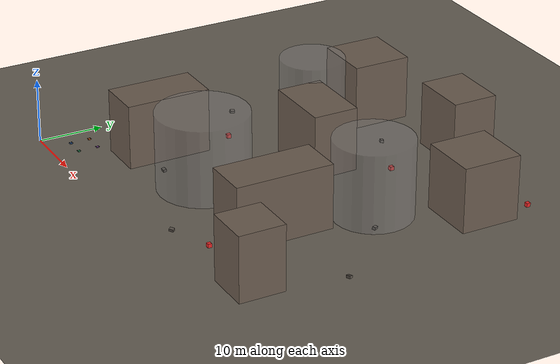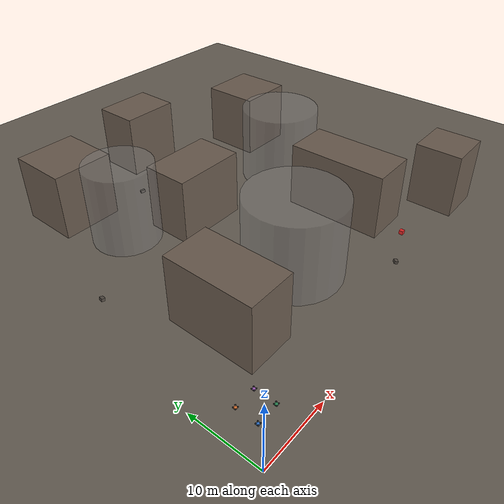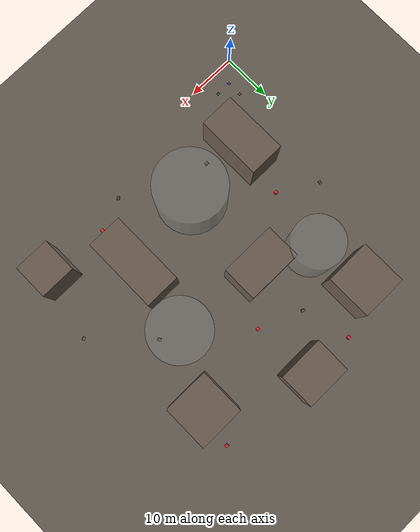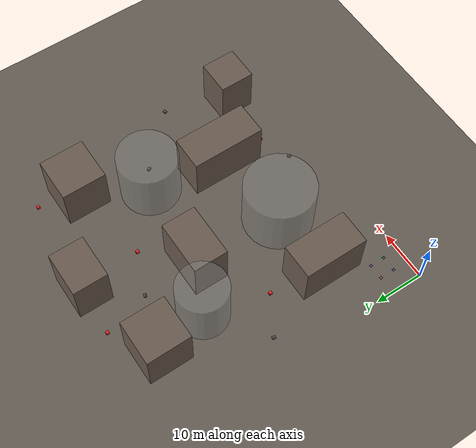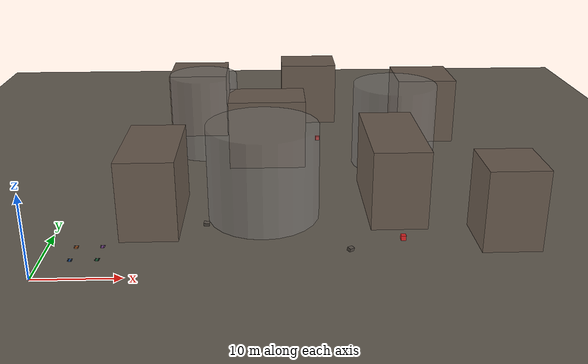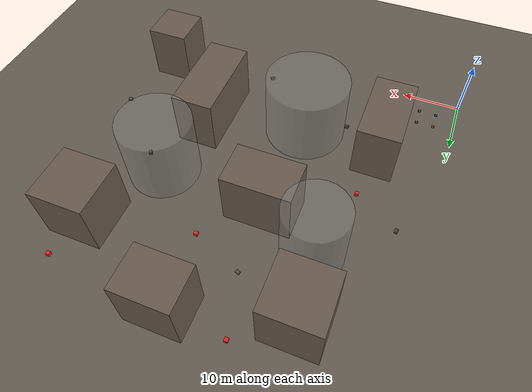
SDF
<?xml version="1.0"?>
<sdf version="1.8">
  <world name="apocalypse">
    <physics name="default" type="ignored"><max_step_size>0.004</max_step_size>
      <real_time_factor>1.0</real_time_factor></physics>
    <plugin filename="gz-sim-physics-system" name="gz::sim::systems::Physics"/>
    <plugin filename="gz-sim-user-commands-system" name="gz::sim::systems::UserCommands"/>
    <plugin filename="gz-sim-scene-broadcaster-system" name="gz::sim::systems::SceneBroadcaster"/>
    <plugin filename="gz-sim-sensors-system" name="gz::sim::systems::Sensors">
      <render_engine>ogre2</render_engine></plugin>
    <plugin filename="gz-sim-imu-system" name="gz::sim::systems::Imu"/>
    <plugin filename="gz-sim-navsat-system" name="gz::sim::systems::NavSat"/>
    <spherical_coordinates><surface_model>EARTH_WGS84</surface_model>
      <latitude_deg>44.4268</latitude_deg><longitude_deg>26.1025</longitude_deg>
      <elevation>80</elevation><heading_deg>0</heading_deg></spherical_coordinates>
    <scene><ambient>0.28 0.26 0.24 1</ambient>
      <background>0.45 0.38 0.32 1</background><shadows>true</shadows></scene>
    <light type="directional" name="sun_dusk">
      <cast_shadows>true</cast_shadows><pose>0 0 60 0 0 0</pose>
      <diffuse>0.7 0.55 0.4 1</diffuse><specular>0.2 0.2 0.2 1</specular>
      <direction>-0.4 0.2 -0.5</direction>
    </light>
    <model name="ground"><static>true</static>
      <pose>30.0 30.0 0 0 0 0</pose>
      <link name="l">
        <collision name="c"><geometry><plane><normal>0 0 1</normal>
          <size>60.0 60.0</size></plane></geometry></collision>
        <visual name="v"><geometry><plane><normal>0 0 1</normal>
          <size>60.0 60.0</size></plane></geometry>
          <material><ambient>0.36 0.33 0.29 1</ambient>
            <diffuse>0.4 0.37 0.33 1</diffuse></material>
        </visual>
      </link>
    </model>

    <model name="ruin_0"><static>true</static>
      <pose>11.5 14.5 5.0 0 0 0</pose>
      <link name="l">
        <collision name="c"><geometry><box><size>7 13 10.0</size></box></geometry></collision>
        <visual name="v"><geometry><box><size>7 13 10.0</size></box></geometry>
          <material><ambient>0.32 0.27 0.24 1</ambient><diffuse>0.42 0.36 0.31 1</diffuse></material>
        </visual>
      </link>
    </model>
    <model name="ruin_1"><static>true</static>
      <pose>25.5 33.5 5.0 0 0 0</pose>
      <link name="l">
        <collision name="c"><geometry><box><size>11 7 10.0</size></box></geometry></collision>
        <visual name="v"><geometry><box><size>11 7 10.0</size></box></geometry>
          <material><ambient>0.32 0.27 0.24 1</ambient><diffuse>0.42 0.36 0.31 1</diffuse></material>
        </visual>
      </link>
    </model>
    <model name="ruin_2"><static>true</static>
      <pose>41.5 17.5 5.0 0 0 0</pose>
      <link name="l">
        <collision name="c"><geometry><box><size>7 15 10.0</size></box></geometry></collision>
        <visual name="v"><geometry><box><size>7 15 10.0</size></box></geometry>
          <material><ambient>0.32 0.27 0.24 1</ambient><diffuse>0.42 0.36 0.31 1</diffuse></material>
        </visual>
      </link>
    </model>
    <model name="ruin_3"><static>true</static>
      <pose>50.5 44.5 5.0 0 0 0</pose>
      <link name="l">
        <collision name="c"><geometry><box><size>9 9 10.0</size></box></geometry></collision>
        <visual name="v"><geometry><box><size>9 9 10.0</size></box></geometry>
          <material><ambient>0.32 0.27 0.24 1</ambient><diffuse>0.42 0.36 0.31 1</diffuse></material>
        </visual>
      </link>
    </model>
    <model name="ruin_4"><static>true</static>
      <pose>14.5 48.5 5.0 0 0 0</pose>
      <link name="l">
        <collision name="c"><geometry><box><size>9 9 10.0</size></box></geometry></collision>
        <visual name="v"><geometry><box><size>9 9 10.0</size></box></geometry>
          <material><ambient>0.32 0.27 0.24 1</ambient><diffuse>0.42 0.36 0.31 1</diffuse></material>
        </visual>
      </link>
    </model>
    <model name="ruin_5"><static>true</static>
      <pose>32.5 53.5 5.0 0 0 0</pose>
      <link name="l">
        <collision name="c"><geometry><box><size>9 7 10.0</size></box></geometry></collision>
        <visual name="v"><geometry><box><size>9 7 10.0</size></box></geometry>
          <material><ambient>0.32 0.27 0.24 1</ambient><diffuse>0.42 0.36 0.31 1</diffuse></material>
        </visual>
      </link>
    </model>
    <model name="ruin_6"><static>true</static>
      <pose>53.5 7.5 5.0 0 0 0</pose>
      <link name="l">
        <collision name="c"><geometry><box><size>7 7 10.0</size></box></geometry></collision>
        <visual name="v"><geometry><box><size>7 7 10.0</size></box></geometry>
          <material><ambient>0.32 0.27 0.24 1</ambient><diffuse>0.42 0.36 0.31 1</diffuse></material>
        </visual>
      </link>
    </model>

    <model name="smoke_0"><static>true</static>
      <pose>25 15 6 0 0 0</pose>
      <link name="l">
        <visual name="v"><transparency>0.6</transparency>
          <geometry><cylinder><radius>7</radius><length>12</length></cylinder></geometry>
          <material><ambient>0.5 0.5 0.5 1</ambient><diffuse>0.55 0.55 0.55 1</diffuse></material>
        </visual>
      </link>
    </model>
    <model name="smoke_1"><static>true</static>
      <pose>44 32 6 0 0 0</pose>
      <link name="l">
        <visual name="v"><transparency>0.6</transparency>
          <geometry><cylinder><radius>6</radius><length>12</length></cylinder></geometry>
          <material><ambient>0.5 0.5 0.5 1</ambient><diffuse>0.55 0.55 0.55 1</diffuse></material>
        </visual>
      </link>
    </model>
    <model name="smoke_2"><static>true</static>
      <pose>16 38 6 0 0 0</pose>
      <link name="l">
        <visual name="v"><transparency>0.6</transparency>
          <geometry><cylinder><radius>5</radius><length>12</length></cylinder></geometry>
          <material><ambient>0.5 0.5 0.5 1</ambient><diffuse>0.55 0.55 0.55 1</diffuse></material>
        </visual>
      </link>
    </model>

    <model name="victim_0"><static>true</static>
      <pose>12.5 25.5 0.3 0 0 0</pose>
      <link name="l">
        <collision name="c"><geometry><box><size>0.6 0.6 0.6</size></box></geometry></collision>
        <visual name="v"><geometry><box><size>0.6 0.6 0.6</size></box></geometry>
          <material><ambient>0.8 0.1 0.1 1</ambient><diffuse>0.9 0.15 0.15 1</diffuse></material>
        </visual>
      </link>
    </model>
    <model name="victim_1"><static>true</static>
      <pose>33.5 41.5 0.3 0 0 0</pose>
      <link name="l">
        <collision name="c"><geometry><box><size>0.6 0.6 0.6</size></box></geometry></collision>
        <visual name="v"><geometry><box><size>0.6 0.6 0.6</size></box></geometry>
          <material><ambient>0.8 0.1 0.1 1</ambient><diffuse>0.9 0.15 0.15 1</diffuse></material>
        </visual>
      </link>
    </model>
    <model name="victim_2"><static>true</static>
      <pose>41.5 7.5 0.3 0 0 0</pose>
      <link name="l">
        <collision name="c"><geometry><box><size>0.6 0.6 0.6</size></box></geometry></collision>
        <visual name="v"><geometry><box><size>0.6 0.6 0.6</size></box></geometry>
          <material><ambient>0.8 0.1 0.1 1</ambient><diffuse>0.9 0.15 0.15 1</diffuse></material>
        </visual>
      </link>
    </model>
    <model name="victim_3"><static>true</static>
      <pose>52.5 52.5 0.3 0 0 0</pose>
      <link name="l">
        <collision name="c"><geometry><box><size>0.6 0.6 0.6</size></box></geometry></collision>
        <visual name="v"><geometry><box><size>0.6 0.6 0.6</size></box></geometry>
          <material><ambient>0.8 0.1 0.1 1</ambient><diffuse>0.9 0.15 0.15 1</diffuse></material>
        </visual>
      </link>
    </model>
    <model name="victim_4"><static>true</static>
      <pose>22.5 54.5 0.3 0 0 0</pose>
      <link name="l">
        <collision name="c"><geometry><box><size>0.6 0.6 0.6</size></box></geometry></collision>
        <visual name="v"><geometry><box><size>0.6 0.6 0.6</size></box></geometry>
          <material><ambient>0.8 0.1 0.1 1</ambient><diffuse>0.9 0.15 0.15 1</diffuse></material>
        </visual>
      </link>
    </model>

    <model name="debris_0">
      <pose>18 12 0.25 0.2 0.1 0.0</pose>
      <link name="l">
        <inertial><mass>2.0</mass><inertia>
          <ixx>0.083</ixx><iyy>0.083</iyy><izz>0.083</izz>
          <ixy>0</ixy><ixz>0</ixz><iyz>0</iyz></inertia></inertial>
        <collision name="c"><geometry><box><size>0.7 0.5 0.4</size></box></geometry></collision>
        <visual name="v"><geometry><box><size>0.7 0.5 0.4</size></box></geometry>
          <material><ambient>0.25 0.23 0.21 1</ambient><diffuse>0.33 0.3 0.27 1</diffuse></material>
        </visual>
      </link>
    </model>
    <model name="debris_1">
      <pose>35 5 0.25 0.2 0.1 0.7</pose>
      <link name="l">
        <inertial><mass>2.0</mass><inertia>
          <ixx>0.083</ixx><iyy>0.083</iyy><izz>0.083</izz>
          <ixy>0</ixy><ixz>0</ixz><iyz>0</iyz></inertia></inertial>
        <collision name="c"><geometry><box><size>0.7 0.5 0.4</size></box></geometry></collision>
        <visual name="v"><geometry><box><size>0.7 0.5 0.4</size></box></geometry>
          <material><ambient>0.25 0.23 0.21 1</ambient><diffuse>0.33 0.3 0.27 1</diffuse></material>
        </visual>
      </link>
    </model>
    <model name="debris_2">
      <pose>5 30 0.25 0.2 0.1 1.4</pose>
      <link name="l">
        <inertial><mass>2.0</mass><inertia>
          <ixx>0.083</ixx><iyy>0.083</iyy><izz>0.083</izz>
          <ixy>0</ixy><ixz>0</ixz><iyz>0</iyz></inertia></inertial>
        <collision name="c"><geometry><box><size>0.7 0.5 0.4</size></box></geometry></collision>
        <visual name="v"><geometry><box><size>0.7 0.5 0.4</size></box></geometry>
          <material><ambient>0.25 0.23 0.21 1</ambient><diffuse>0.33 0.3 0.27 1</diffuse></material>
        </visual>
      </link>
    </model>
    <model name="debris_3">
      <pose>48 30 0.25 0.2 0.1 2.0999999999999996</pose>
      <link name="l">
        <inertial><mass>2.0</mass><inertia>
          <ixx>0.083</ixx><iyy>0.083</iyy><izz>0.083</izz>
          <ixy>0</ixy><ixz>0</ixz><iyz>0</iyz></inertia></inertial>
        <collision name="c"><geometry><box><size>0.7 0.5 0.4</size></box></geometry></collision>
        <visual name="v"><geometry><box><size>0.7 0.5 0.4</size></box></geometry>
          <material><ambient>0.25 0.23 0.21 1</ambient><diffuse>0.33 0.3 0.27 1</diffuse></material>
        </visual>
      </link>
    </model>
    <model name="debris_4">
      <pose>25 45 0.25 0.2 0.1 2.8</pose>
      <link name="l">
        <inertial><mass>2.0</mass><inertia>
          <ixx>0.083</ixx><iyy>0.083</iyy><izz>0.083</izz>
          <ixy>0</ixy><ixz>0</ixz><iyz>0</iyz></inertia></inertial>
        <collision name="c"><geometry><box><size>0.7 0.5 0.4</size></box></geometry></collision>
        <visual name="v"><geometry><box><size>0.7 0.5 0.4</size></box></geometry>
          <material><ambient>0.25 0.23 0.21 1</ambient><diffuse>0.33 0.3 0.27 1</diffuse></material>
        </visual>
      </link>
    </model>
    <model name="debris_5">
      <pose>58 20 0.25 0.2 0.1 3.5</pose>
      <link name="l">
        <inertial><mass>2.0</mass><inertia>
          <ixx>0.083</ixx><iyy>0.083</iyy><izz>0.083</izz>
          <ixy>0</ixy><ixz>0</ixz><iyz>0</iyz></inertia></inertial>
        <collision name="c"><geometry><box><size>0.7 0.5 0.4</size></box></geometry></collision>
        <visual name="v"><geometry><box><size>0.7 0.5 0.4</size></box></geometry>
          <material><ambient>0.25 0.23 0.21 1</ambient><diffuse>0.33 0.3 0.27 1</diffuse></material>
        </visual>
      </link>
    </model>

    <model name="d1">
      <pose>3.5 3.5 0.3 0 0 0</pose>
      <link name="base_link">
        <gravity>false</gravity>
        <inertial><mass>1.2</mass><inertia>
          <ixx>0.01</ixx><iyy>0.01</iyy><izz>0.02</izz>
          <ixy>0</ixy><ixz>0</ixz><iyz>0</iyz></inertia></inertial>
        <collision name="c"><geometry><box><size>0.4 0.4 0.12</size></box></geometry></collision>
        <visual name="body"><geometry><box><size>0.4 0.4 0.12</size></box></geometry>
          <material><ambient>0.18 0.45 0.80 1</ambient><diffuse>0.18 0.45 0.80 1</diffuse></material>
        </visual>
        <visual name="rotor_0"><pose>0.18 0.18 0.07 0 0 0</pose>
          <geometry><cylinder><radius>0.1</radius><length>0.02</length></cylinder></geometry>
          <material><ambient>0.08 0.08 0.08 1</ambient><diffuse>0.12 0.12 0.12 1</diffuse></material>
        </visual>
        <visual name="rotor_1"><pose>0.18 -0.18 0.07 0 0 0</pose>
          <geometry><cylinder><radius>0.1</radius><length>0.02</length></cylinder></geometry>
          <material><ambient>0.08 0.08 0.08 1</ambient><diffuse>0.12 0.12 0.12 1</diffuse></material>
        </visual>
        <visual name="rotor_2"><pose>-0.18 0.18 0.07 0 0 0</pose>
          <geometry><cylinder><radius>0.1</radius><length>0.02</length></cylinder></geometry>
          <material><ambient>0.08 0.08 0.08 1</ambient><diffuse>0.12 0.12 0.12 1</diffuse></material>
        </visual>
        <visual name="rotor_3"><pose>-0.18 -0.18 0.07 0 0 0</pose>
          <geometry><cylinder><radius>0.1</radius><length>0.02</length></cylinder></geometry>
          <material><ambient>0.08 0.08 0.08 1</ambient><diffuse>0.12 0.12 0.12 1</diffuse></material>
        </visual>
        <sensor name="imu" type="imu">
          <update_rate>100</update_rate><topic>/model/d1/imu</topic>
        </sensor>
        <sensor name="camera" type="camera">
          <update_rate>15</update_rate><topic>/model/d1/camera</topic>
          <camera><horizontal_fov>1.25</horizontal_fov>
            <image><width>320</width><height>240</height></image>
            <clip><near>0.1</near><far>80</far></clip></camera>
        </sensor>
        <sensor name="lidar" type="gpu_lidar">
          <update_rate>10</update_rate><topic>/model/d1/lidar</topic>
          <lidar><scan><horizontal><samples>360</samples><resolution>1</resolution>
            <min_angle>-3.1416</min_angle><max_angle>3.1416</max_angle></horizontal></scan>
          <range><min>0.2</min><max>30</max><resolution>0.05</resolution></range></lidar>
        </sensor>
        <sensor name="navsat" type="navsat">
          <update_rate>5</update_rate><topic>/model/d1/navsat</topic>
          <navsat><position_sensing>
            <horizontal><noise type="gaussian"><mean>0</mean><stddev>1.5</stddev></noise></horizontal>
            <vertical><noise type="gaussian"><mean>0</mean><stddev>3.0</stddev></noise></vertical>
          </position_sensing></navsat>
        </sensor>
      </link>
      <plugin filename="gz-sim-velocity-control-system"
              name="gz::sim::systems::VelocityControl">
        <topic>/model/d1/cmd_vel</topic>
      </plugin>
      <plugin filename="gz-sim-odometry-publisher-system"
              name="gz::sim::systems::OdometryPublisher">
        <odom_topic>/model/d1/odometry</odom_topic>
        <odom_frame>d1/odom</odom_frame>
        <robot_base_frame>d1/base_link</robot_base_frame>
        <odom_publish_frequency>30</odom_publish_frequency>
        <dimensions>3</dimensions>
      </plugin>
    </model>
    <model name="d2">
      <pose>3.5 6.5 0.3 0 0 0</pose>
      <link name="base_link">
        <gravity>false</gravity>
        <inertial><mass>1.2</mass><inertia>
          <ixx>0.01</ixx><iyy>0.01</iyy><izz>0.02</izz>
          <ixy>0</ixy><ixz>0</ixz><iyz>0</iyz></inertia></inertial>
        <collision name="c"><geometry><box><size>0.4 0.4 0.12</size></box></geometry></collision>
        <visual name="body"><geometry><box><size>0.4 0.4 0.12</size></box></geometry>
          <material><ambient>0.85 0.44 0.18 1</ambient><diffuse>0.85 0.44 0.18 1</diffuse></material>
        </visual>
        <visual name="rotor_0"><pose>0.18 0.18 0.07 0 0 0</pose>
          <geometry><cylinder><radius>0.1</radius><length>0.02</length></cylinder></geometry>
          <material><ambient>0.08 0.08 0.08 1</ambient><diffuse>0.12 0.12 0.12 1</diffuse></material>
        </visual>
        <visual name="rotor_1"><pose>0.18 -0.18 0.07 0 0 0</pose>
          <geometry><cylinder><radius>0.1</radius><length>0.02</length></cylinder></geometry>
          <material><ambient>0.08 0.08 0.08 1</ambient><diffuse>0.12 0.12 0.12 1</diffuse></material>
        </visual>
        <visual name="rotor_2"><pose>-0.18 0.18 0.07 0 0 0</pose>
          <geometry><cylinder><radius>0.1</radius><length>0.02</length></cylinder></geometry>
          <material><ambient>0.08 0.08 0.08 1</ambient><diffuse>0.12 0.12 0.12 1</diffuse></material>
        </visual>
        <visual name="rotor_3"><pose>-0.18 -0.18 0.07 0 0 0</pose>
          <geometry><cylinder><radius>0.1</radius><length>0.02</length></cylinder></geometry>
          <material><ambient>0.08 0.08 0.08 1</ambient><diffuse>0.12 0.12 0.12 1</diffuse></material>
        </visual>
        <sensor name="imu" type="imu">
          <update_rate>100</update_rate><topic>/model/d2/imu</topic>
        </sensor>
        <sensor name="camera" type="camera">
          <update_rate>15</update_rate><topic>/model/d2/camera</topic>
          <camera><horizontal_fov>1.25</horizontal_fov>
            <image><width>320</width><height>240</height></image>
            <clip><near>0.1</near><far>80</far></clip></camera>
        </sensor>
        <sensor name="lidar" type="gpu_lidar">
          <update_rate>10</update_rate><topic>/model/d2/lidar</topic>
          <lidar><scan><horizontal><samples>360</samples><resolution>1</resolution>
            <min_angle>-3.1416</min_angle><max_angle>3.1416</max_angle></horizontal></scan>
          <range><min>0.2</min><max>30</max><resolution>0.05</resolution></range></lidar>
        </sensor>
        <sensor name="navsat" type="navsat">
          <update_rate>5</update_rate><topic>/model/d2/navsat</topic>
          <navsat><position_sensing>
            <horizontal><noise type="gaussian"><mean>0</mean><stddev>1.5</stddev></noise></horizontal>
            <vertical><noise type="gaussian"><mean>0</mean><stddev>3.0</stddev></noise></vertical>
          </position_sensing></navsat>
        </sensor>
      </link>
      <plugin filename="gz-sim-velocity-control-system"
              name="gz::sim::systems::VelocityControl">
        <topic>/model/d2/cmd_vel</topic>
      </plugin>
      <plugin filename="gz-sim-odometry-publisher-system"
              name="gz::sim::systems::OdometryPublisher">
        <odom_topic>/model/d2/odometry</odom_topic>
        <odom_frame>d2/odom</odom_frame>
        <robot_base_frame>d2/base_link</robot_base_frame>
        <odom_publish_frequency>30</odom_publish_frequency>
        <dimensions>3</dimensions>
      </plugin>
    </model>
    <model name="d3">
      <pose>6.5 3.5 0.3 0 0 0</pose>
      <link name="base_link">
        <gravity>false</gravity>
        <inertial><mass>1.2</mass><inertia>
          <ixx>0.01</ixx><iyy>0.01</iyy><izz>0.02</izz>
          <ixy>0</ixy><ixz>0</ixz><iyz>0</iyz></inertia></inertial>
        <collision name="c"><geometry><box><size>0.4 0.4 0.12</size></box></geometry></collision>
        <visual name="body"><geometry><box><size>0.4 0.4 0.12</size></box></geometry>
          <material><ambient>0.18 0.55 0.34 1</ambient><diffuse>0.18 0.55 0.34 1</diffuse></material>
        </visual>
        <visual name="rotor_0"><pose>0.18 0.18 0.07 0 0 0</pose>
          <geometry><cylinder><radius>0.1</radius><length>0.02</length></cylinder></geometry>
          <material><ambient>0.08 0.08 0.08 1</ambient><diffuse>0.12 0.12 0.12 1</diffuse></material>
        </visual>
        <visual name="rotor_1"><pose>0.18 -0.18 0.07 0 0 0</pose>
          <geometry><cylinder><radius>0.1</radius><length>0.02</length></cylinder></geometry>
          <material><ambient>0.08 0.08 0.08 1</ambient><diffuse>0.12 0.12 0.12 1</diffuse></material>
        </visual>
        <visual name="rotor_2"><pose>-0.18 0.18 0.07 0 0 0</pose>
          <geometry><cylinder><radius>0.1</radius><length>0.02</length></cylinder></geometry>
          <material><ambient>0.08 0.08 0.08 1</ambient><diffuse>0.12 0.12 0.12 1</diffuse></material>
        </visual>
        <visual name="rotor_3"><pose>-0.18 -0.18 0.07 0 0 0</pose>
          <geometry><cylinder><radius>0.1</radius><length>0.02</length></cylinder></geometry>
          <material><ambient>0.08 0.08 0.08 1</ambient><diffuse>0.12 0.12 0.12 1</diffuse></material>
        </visual>
        <sensor name="imu" type="imu">
          <update_rate>100</update_rate><topic>/model/d3/imu</topic>
        </sensor>
        <sensor name="camera" type="camera">
          <update_rate>15</update_rate><topic>/model/d3/camera</topic>
          <camera><horizontal_fov>1.25</horizontal_fov>
            <image><width>320</width><height>240</height></image>
            <clip><near>0.1</near><far>80</far></clip></camera>
        </sensor>
        <sensor name="lidar" type="gpu_lidar">
          <update_rate>10</update_rate><topic>/model/d3/lidar</topic>
          <lidar><scan><horizontal><samples>360</samples><resolution>1</resolution>
            <min_angle>-3.1416</min_angle><max_angle>3.1416</max_angle></horizontal></scan>
          <range><min>0.2</min><max>30</max><resolution>0.05</resolution></range></lidar>
        </sensor>
        <sensor name="navsat" type="navsat">
          <update_rate>5</update_rate><topic>/model/d3/navsat</topic>
          <navsat><position_sensing>
            <horizontal><noise type="gaussian"><mean>0</mean><stddev>1.5</stddev></noise></horizontal>
            <vertical><noise type="gaussian"><mean>0</mean><stddev>3.0</stddev></noise></vertical>
          </position_sensing></navsat>
        </sensor>
      </link>
      <plugin filename="gz-sim-velocity-control-system"
              name="gz::sim::systems::VelocityControl">
        <topic>/model/d3/cmd_vel</topic>
      </plugin>
      <plugin filename="gz-sim-odometry-publisher-system"
              name="gz::sim::systems::OdometryPublisher">
        <odom_topic>/model/d3/odometry</odom_topic>
        <odom_frame>d3/odom</odom_frame>
        <robot_base_frame>d3/base_link</robot_base_frame>
        <odom_publish_frequency>30</odom_publish_frequency>
        <dimensions>3</dimensions>
      </plugin>
    </model>
    <model name="d4">
      <pose>6.5 6.5 0.3 0 0 0</pose>
      <link name="base_link">
        <gravity>false</gravity>
        <inertial><mass>1.2</mass><inertia>
          <ixx>0.01</ixx><iyy>0.01</iyy><izz>0.02</izz>
          <ixy>0</ixy><ixz>0</ixz><iyz>0</iyz></inertia></inertial>
        <collision name="c"><geometry><box><size>0.4 0.4 0.12</size></box></geometry></collision>
        <visual name="body"><geometry><box><size>0.4 0.4 0.12</size></box></geometry>
          <material><ambient>0.61 0.35 0.71 1</ambient><diffuse>0.61 0.35 0.71 1</diffuse></material>
        </visual>
        <visual name="rotor_0"><pose>0.18 0.18 0.07 0 0 0</pose>
          <geometry><cylinder><radius>0.1</radius><length>0.02</length></cylinder></geometry>
          <material><ambient>0.08 0.08 0.08 1</ambient><diffuse>0.12 0.12 0.12 1</diffuse></material>
        </visual>
        <visual name="rotor_1"><pose>0.18 -0.18 0.07 0 0 0</pose>
          <geometry><cylinder><radius>0.1</radius><length>0.02</length></cylinder></geometry>
          <material><ambient>0.08 0.08 0.08 1</ambient><diffuse>0.12 0.12 0.12 1</diffuse></material>
        </visual>
        <visual name="rotor_2"><pose>-0.18 0.18 0.07 0 0 0</pose>
          <geometry><cylinder><radius>0.1</radius><length>0.02</length></cylinder></geometry>
          <material><ambient>0.08 0.08 0.08 1</ambient><diffuse>0.12 0.12 0.12 1</diffuse></material>
        </visual>
        <visual name="rotor_3"><pose>-0.18 -0.18 0.07 0 0 0</pose>
          <geometry><cylinder><radius>0.1</radius><length>0.02</length></cylinder></geometry>
          <material><ambient>0.08 0.08 0.08 1</ambient><diffuse>0.12 0.12 0.12 1</diffuse></material>
        </visual>
        <sensor name="imu" type="imu">
          <update_rate>100</update_rate><topic>/model/d4/imu</topic>
        </sensor>
        <sensor name="camera" type="camera">
          <update_rate>15</update_rate><topic>/model/d4/camera</topic>
          <camera><horizontal_fov>1.25</horizontal_fov>
            <image><width>320</width><height>240</height></image>
            <clip><near>0.1</near><far>80</far></clip></camera>
        </sensor>
        <sensor name="lidar" type="gpu_lidar">
          <update_rate>10</update_rate><topic>/model/d4/lidar</topic>
          <lidar><scan><horizontal><samples>360</samples><resolution>1</resolution>
            <min_angle>-3.1416</min_angle><max_angle>3.1416</max_angle></horizontal></scan>
          <range><min>0.2</min><max>30</max><resolution>0.05</resolution></range></lidar>
        </sensor>
        <sensor name="navsat" type="navsat">
          <update_rate>5</update_rate><topic>/model/d4/navsat</topic>
          <navsat><position_sensing>
            <horizontal><noise type="gaussian"><mean>0</mean><stddev>1.5</stddev></noise></horizontal>
            <vertical><noise type="gaussian"><mean>0</mean><stddev>3.0</stddev></noise></vertical>
          </position_sensing></navsat>
        </sensor>
      </link>
      <plugin filename="gz-sim-velocity-control-system"
              name="gz::sim::systems::VelocityControl">
        <topic>/model/d4/cmd_vel</topic>
      </plugin>
      <plugin filename="gz-sim-odometry-publisher-system"
              name="gz::sim::systems::OdometryPublisher">
        <odom_topic>/model/d4/odometry</odom_topic>
        <odom_frame>d4/odom</odom_frame>
        <robot_base_frame>d4/base_link</robot_base_frame>
        <odom_publish_frequency>30</odom_publish_frequency>
        <dimensions>3</dimensions>
      </plugin>
    </model>
  </world>
</sdf>
